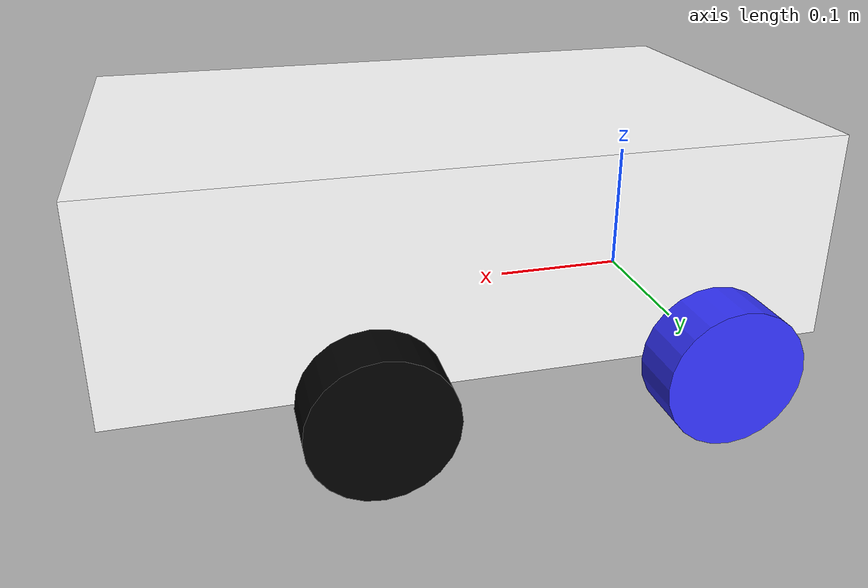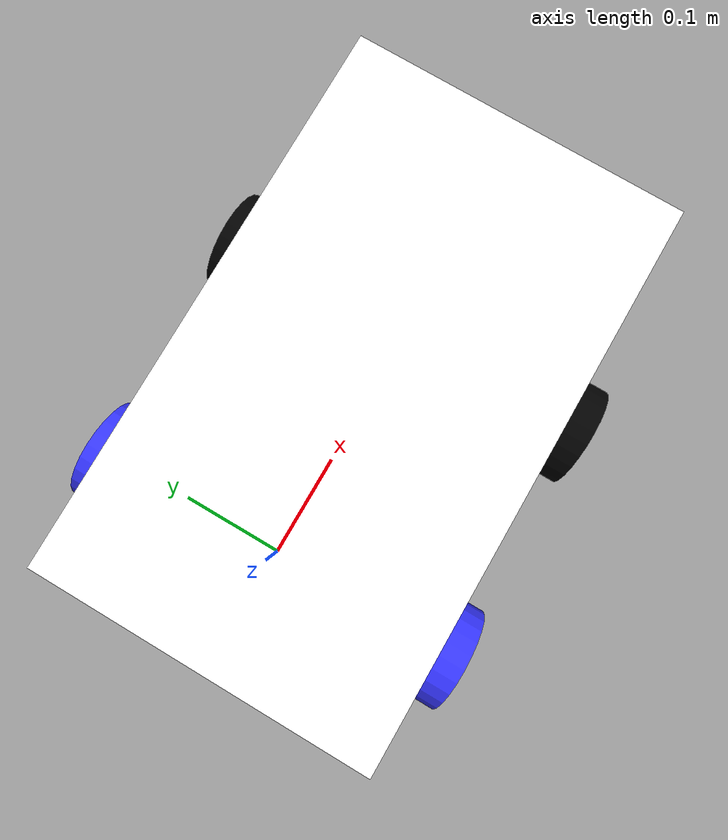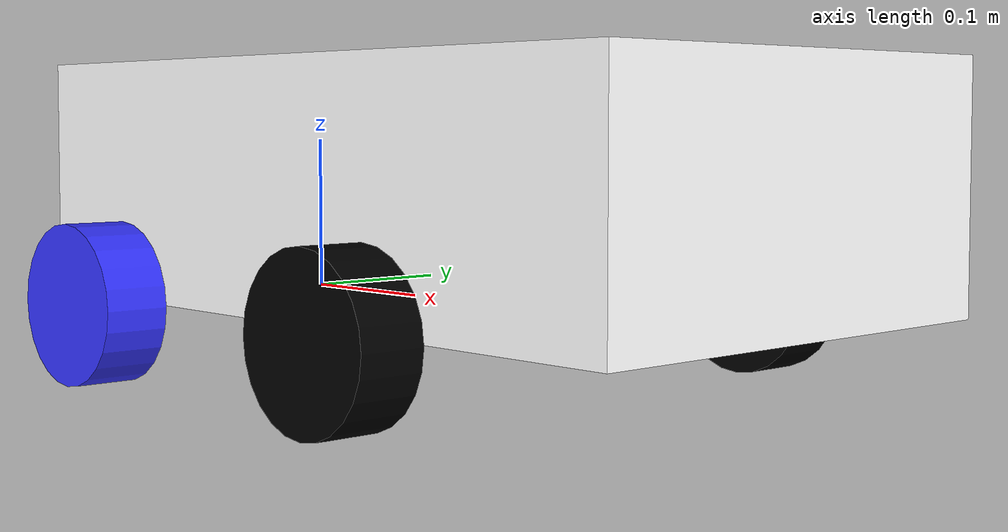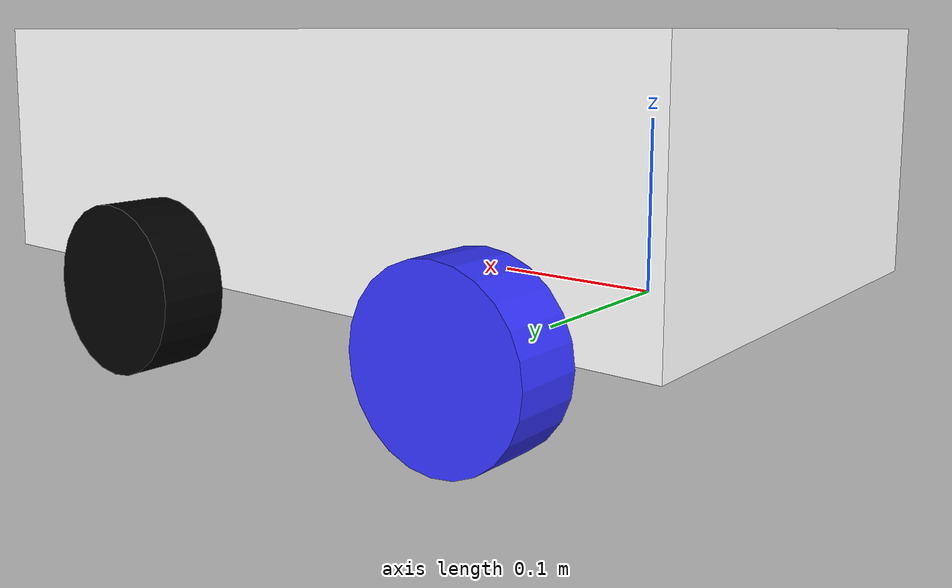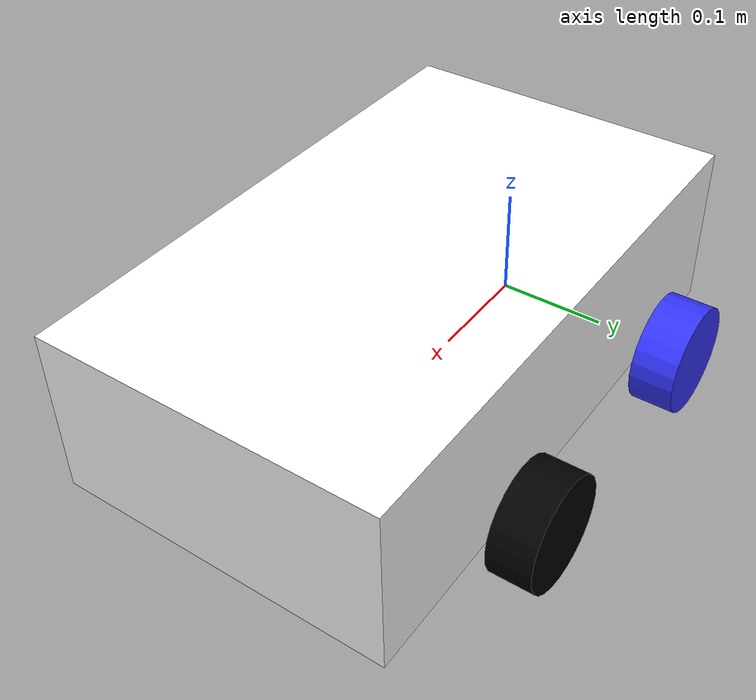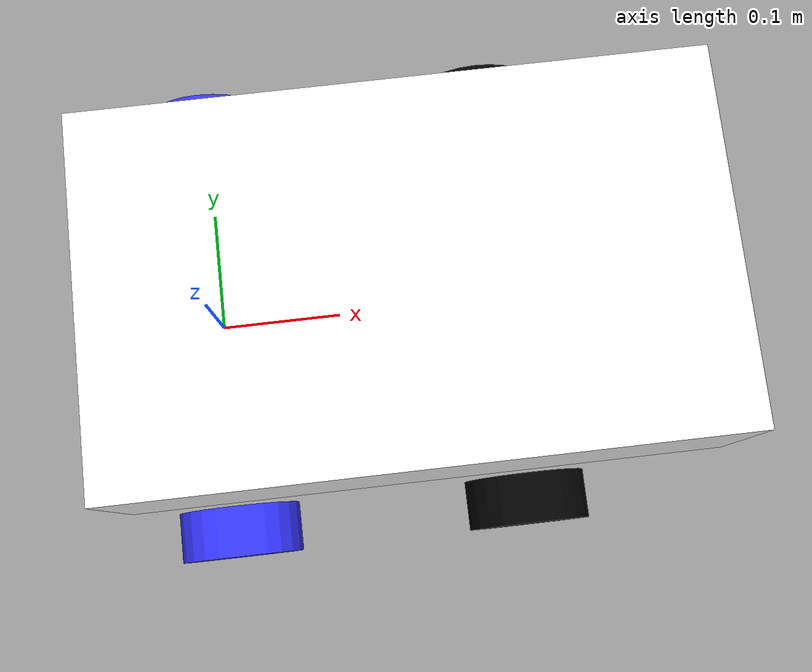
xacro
<?xml version="1.0"?>
<robot xmlns:xacro="http://www.ros.org/wiki/xacro">

    <xacro:include filename="inertial_macros.xacro"/>

    <material name="white">
        <color rgba = "1 1 1 1"/>
    </material>

    <material name= "orange">
        <color rgba="1 0.3 0.1 1"/>
    </material>
    <material name="blue">
        <color rgba=".2 .2 1 1" />
    </material>

    <material name="black">
        <color rgba="0 0 0 1"/>
    </material>

    <material name='red'>
       <color rgba="1 0 0 1"/>
    </material>
    <!-- BASE LINK -->
    <link name="base_link">

    </link>
    <!-- CHASSIS LINK -->
    <joint name= "chassis_joint" type = "fixed">
        <parent link="base_link"/>
        <child link="chassis"/>
        <origin xyz="0.01 0 0"/>
    </joint>

    <link name ="chassis">
        <visual>
            <origin xyz="0.15 0 0.075"/>
            <geometry>
                <box size="0.5 0.3 0.15"/>
            </geometry>
            <material name="white"/>
        </visual>
        <collision>
            <origin xyz="0.15 0 0.075"/>
            <geometry>
                <box size="0.5 0.3 0.15"/>
            </geometry>

        </collision>

        <xacro:inertial_box mass = "0.5" x="0.3" y="0.3" z="0.15">
            <origin xyz="0.15 0 0.75" rpy="0 0 0"/>
        </xacro:inertial_box>
    </link>
    <gazebo reference='chassis'>
        <material>Gazebo/White</material>
    </gazebo>

    <!--LEFT WHEEL LINK-->

    <joint name='left_wheel_joint' type='continuous'>
        <parent link = 'base_link'/>
        <child link='left_wheel'/>
        <origin xyz = '0 0.175 0' rpy = '-${pi/2} 0 0'/>
        <axis xyz = '0 0 1'/>
    </joint>

    <link name = 'left_wheel'>
        <visual>
            <geometry>
                <cylinder radius='0.05' length='0.04'/>
            </geometry>
            <material name='blue'/>
        </visual>
        <collision>
            <geometry>
                <cylinder radius='0.05' length='0.04'/>
            </geometry>

        </collision>
        <xacro:inertial_cylinder mass='0.1' length='.04' radius='.05'>
            <origin xyz='0 0 0' rpy='0 0 0'/>
        </xacro:inertial_cylinder>
    </link>
    <gazebo reference='left_wheel'>
        <material>Gazebo/Blue</material>
    </gazebo>
    <!--RIGHT WHEEL LINK-->

    <joint name='right_wheel_joint' type='continuous'>
        <parent link = 'base_link'/>
        <child link='right_wheel'/>
        <origin xyz = '0 -0.175 0' rpy = '${pi/2} 0 0'/>
        <axis xyz = '0 0 -1'/>
    </joint>

    <link name = 'right_wheel'>
        <visual>
            <geometry>
                <cylinder radius='0.05' length='0.04'/>
            </geometry>
            <material name='blue'/>
        </visual>
        <collision>
            <geometry>
                <cylinder radius='0.05' length='0.04'/>
            </geometry>

        </collision>
        <xacro:inertial_cylinder mass='0.1' length='.04' radius='.05'>
            <origin xyz='0 0 0' rpy='0 0 0'/>
        </xacro:inertial_cylinder>
    </link>
    <gazebo reference='right_wheel'>
        <material>Gazebo/Blue</material>
    </gazebo>

    <!--LEFT CASTER WHEEL LINK-->
    <joint name='L_caster_wheel_joint' type = 'fixed'>
        <parent link='base_link'/>
        <child link='L_caster_wheel'/>
        <origin xyz = '0.24 0.175 0' rpy = '-${pi/2} 0 0'/>

    </joint>

    <link name = 'L_caster_wheel'>
        <visual>
            <geometry>
                <cylinder radius = '0.05' length ='0.04'/>
            </geometry>
            <material name = 'black'/>
        </visual>
        <collision>
            <geometry>
                <cylinder radius = '0.05' length ='0.04'/>
            </geometry>

        </collision>
        <xacro:inertial_cylinder mass='0.1' length='.04' radius='.05'>
            <origin xyz='0 0 0' rpy='0 0 0'/>
        </xacro:inertial_cylinder>
    </link>
    <gazebo reference='L_caster_wheel'>
        <material>Gazebo/Black</material>
        <mu1 value='0.001'/>
        <mu2 value='0.001'/>
    </gazebo>
        <!--RIGHT CASTER WHEEL LINK-->
    <joint name='R_caster_wheel_joint' type = 'fixed'>
        <parent link='base_link'/>
        <child link='R_caster_wheel'/>
        <origin xyz = '0.24 -0.175 0' rpy = '${pi/2} 0 0'/>

    </joint>

    <link name = 'R_caster_wheel'>
        <visual>
            <geometry>
                <cylinder radius = '0.05' length ='0.04'/>
            </geometry>
            <material name = 'black'/>
        </visual>
        <collision>
            <geometry>
                <cylinder radius = '0.05' length ='0.04'/>
            </geometry>

        </collision>
        <xacro:inertial_cylinder mass='0.1' length='.04' radius='.05'>
            <origin xyz='0 0 0' rpy='0 0 0'/>
        </xacro:inertial_cylinder>
    </link>
    <gazebo reference='R_caster_wheel'>
        <material>Gazebo/Black</material>
        <mu1 value='0.001'/>
        <mu2 value='0.001'/>
    </gazebo>
</robot>
